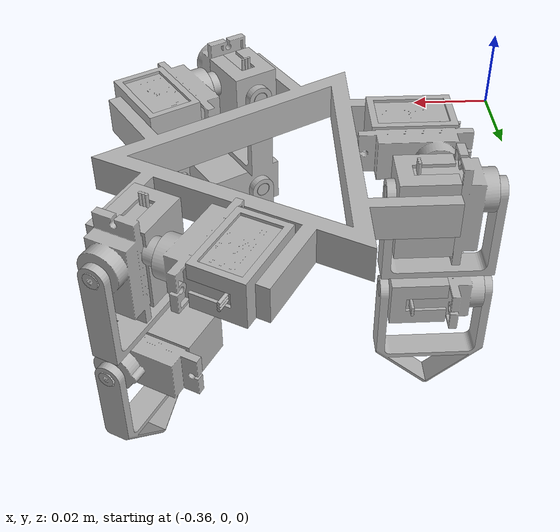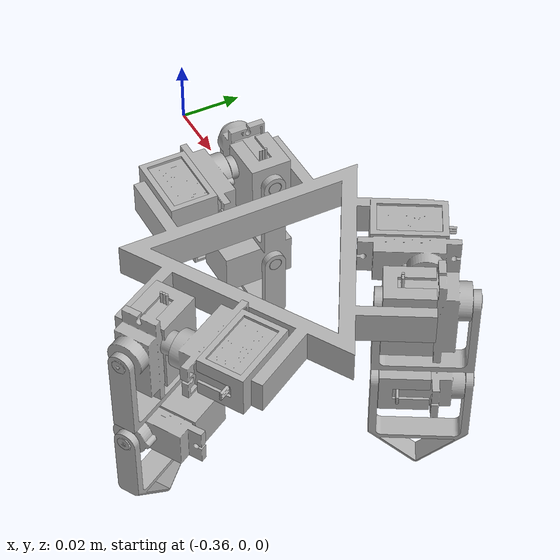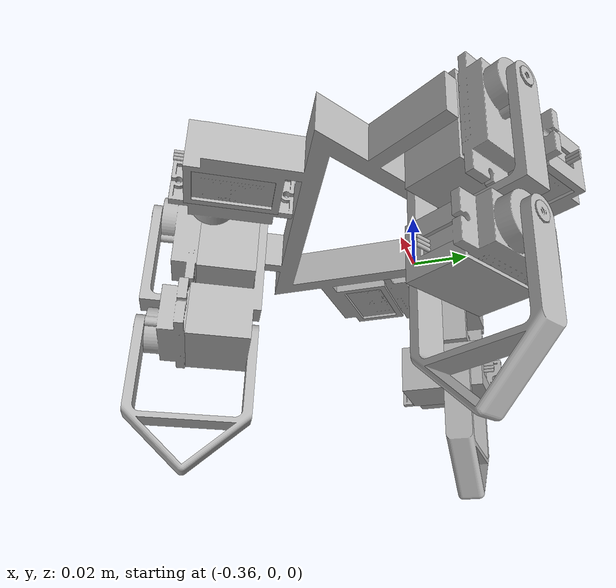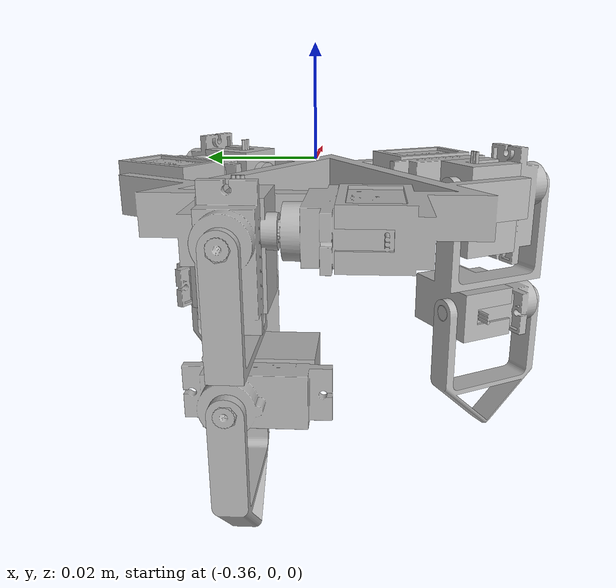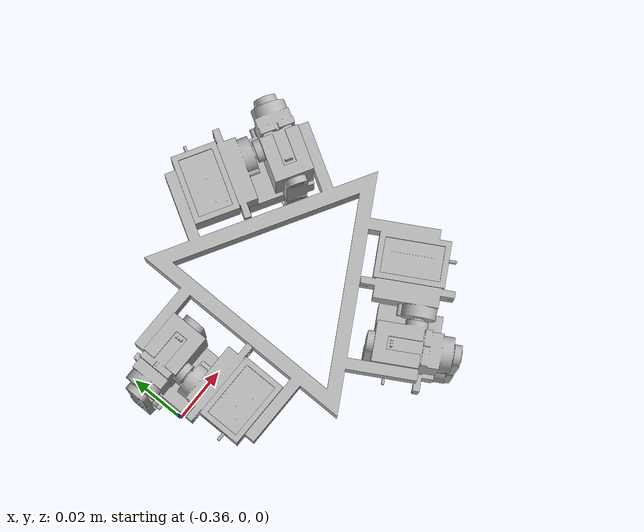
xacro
<?xml version="1.0" ?>
<robot name="Triped" xmlns:xacro="http://www.ros.org/wiki/xacro">

<mujoco>
  <compiler meshdir="../meshes/" balanceinertia="true" discardvisual="false" />
</mujoco>

<xacro:include filename="$(find Triped_description)/urdf/materials.xacro" />
<xacro:include filename="$(find Triped_description)/urdf/Triped.trans" />
<xacro:include filename="$(find Triped_description)/urdf/Triped.gazebo" />

<link name="base_link">
  <inertial>
    <origin xyz="-0.29999999999999977 0.002819220522697178 -0.018268314912160678" rpy="0 0 0"/>
    <mass value="0.1757688053142464"/>
    <inertia ixx="0.000131" iyy="0.000131" izz="0.000257" ixy="-0.0" iyz="-0.0" ixz="0.0"/>
  </inertial>
  <visual>
    <origin xyz="0 0 0" rpy="0 0 0"/>
    <geometry>
      <mesh filename="package://Triped_description/meshes/base_link.stl" scale="0.001 0.001 0.001"/>
    </geometry>
    <material name="silver"/>
  </visual>
</link>

<link name="servo_7_1">
  <inertial>
    <origin xyz="-0.012444434964551943 0.0004572862700335852 2.3437537285259102e-07" rpy="0 0 0"/>
    <mass value="0.05681321383283272"/>
    <inertia ixx="3e-06" iyy="4e-06" izz="6e-06" ixy="0.0" iyz="0.0" ixz="0.0"/>
  </inertial>
  <visual>
    <origin xyz="0.334457 -0.013741 0.052031" rpy="0 0 0"/>
    <geometry>
      <mesh filename="package://Triped_description/meshes/servo_7_1.stl" scale="0.001 0.001 0.001"/>
    </geometry>
    <material name="silver"/>
  </visual>
</link>

<link name="servo_8_1">
  <inertial>
    <origin xyz="0.005826157473749316 -0.011006146504216378 2.3443497752101417e-07" rpy="0 0 0"/>
    <mass value="0.056813213832833276"/>
    <inertia ixx="4e-06" iyy="3e-06" izz="6e-06" ixy="-0.0" iyz="0.0" ixz="-0.0"/>
  </inertial>
  <visual>
    <origin xyz="0.29223 0.032482 0.052031" rpy="0 0 0"/>
    <geometry>
      <mesh filename="package://Triped_description/meshes/servo_8_1.stl" scale="0.001 0.001 0.001"/>
    </geometry>
    <material name="silver"/>
  </visual>
</link>

<link name="servo_9_1">
  <inertial>
    <origin xyz="0.006618277490802571 0.010548521802274634 2.3443497750019748e-07" rpy="0 0 0"/>
    <mass value="0.05681321383283352"/>
    <inertia ixx="3e-06" iyy="4e-06" izz="6e-06" ixy="-0.0" iyz="-0.0" ixz="-0.0"/>
  </inertial>
  <visual>
    <origin xyz="0.273313 -0.027199 0.052031" rpy="0 0 0"/>
    <geometry>
      <mesh filename="package://Triped_description/meshes/servo_9_1.stl" scale="0.001 0.001 0.001"/>
    </geometry>
    <material name="silver"/>
  </visual>
</link>

<link name="servo_6_1">
  <inertial>
    <origin xyz="0.006265484650720077 0.010754317370285215 0.00040768815100020867" rpy="0 0 0"/>
    <mass value="0.05681321383283365"/>
    <inertia ixx="5e-06" iyy="4e-06" izz="4e-06" ixy="-1e-06" iyz="-0.0" ixz="-0.0"/>
  </inertial>
  <visual>
    <origin xyz="0.269334 -0.024591 0.021891" rpy="0 0 0"/>
    <geometry>
      <mesh filename="package://Triped_description/meshes/servo_6_1.stl" scale="0.001 0.001 0.001"/>
    </geometry>
    <material name="silver"/>
  </visual>
</link>

<link name="servo_5_1">
  <inertial>
    <origin xyz="0.006180683830604161 -0.010803431808095225 0.0004076881510002052" rpy="0 0 0"/>
    <mass value="0.0568132138328333"/>
    <inertia ixx="5e-06" iyy="4e-06" izz="4e-06" ixy="1e-06" iyz="0.0" ixz="-0.0"/>
  </inertial>
  <visual>
    <origin xyz="0.296478 0.034624 0.021891" rpy="0 0 0"/>
    <geometry>
      <mesh filename="package://Triped_description/meshes/servo_5_1.stl" scale="0.001 0.001 0.001"/>
    </geometry>
    <material name="silver"/>
  </visual>
</link>

<link name="servo_4_1">
  <inertial>
    <origin xyz="-0.012446168481324071 4.977600590196432e-05 0.0004076880913956339" rpy="0 0 0"/>
    <mass value="0.05681321383283373"/>
    <inertia ixx="3e-06" iyy="6e-06" izz="4e-06" ixy="0.0" iyz="-0.0" ixz="0.0"/>
  </inertial>
  <visual>
    <origin xyz="0.334188 -0.01849 0.021891" rpy="0 0 0"/>
    <geometry>
      <mesh filename="package://Triped_description/meshes/servo_4_1.stl" scale="0.001 0.001 0.001"/>
    </geometry>
    <material name="silver"/>
  </visual>
</link>

<link name="servo_3_1">
  <inertial>
    <origin xyz="0.010959246446309023 -0.005914329033999341 2.0625278938923852e-07" rpy="0 0 0"/>
    <mass value="0.05681321383283354"/>
    <inertia ixx="3e-06" iyy="4e-06" izz="6e-06" ixy="-0.0" iyz="-0.0" ixz="0.0"/>
  </inertial>
  <visual>
    <origin xyz="0.297718 -0.04981 0.016881" rpy="0 0 0"/>
    <geometry>
      <mesh filename="package://Triped_description/meshes/servo_3_1.stl" scale="0.001 0.001 0.001"/>
    </geometry>
    <material name="silver"/>
  </visual>
</link>

<link name="servo_2_1">
  <inertial>
    <origin xyz="-0.010601373641961231 -0.006534260499228391 2.0625278941352465e-07" rpy="0 0 0"/>
    <mass value="0.05681321383283315"/>
    <inertia ixx="4e-06" iyy="3e-06" izz="6e-06" ixy="-0.0" iyz="-0.0" ixz="-0.0"/>
  </inertial>
  <visual>
    <origin xyz="0.260446 0.022652 0.016881" rpy="0 0 0"/>
    <geometry>
      <mesh filename="package://Triped_description/meshes/servo_2_1.stl" scale="0.001 0.001 0.001"/>
    </geometry>
    <material name="silver"/>
  </visual>
</link>

<link name="servo_1_1">
  <inertial>
    <origin xyz="-0.00035787280434712576 0.012448251101319707 2.0625278945862746e-07" rpy="0 0 0"/>
    <mass value="0.056813213832833935"/>
    <inertia ixx="4e-06" iyy="3e-06" izz="6e-06" ixy="0.0" iyz="0.0" ixz="0.0"/>
  </inertial>
  <visual>
    <origin xyz="0.341836 0.0187 0.016881" rpy="0 0 0"/>
    <geometry>
      <mesh filename="package://Triped_description/meshes/servo_1_1.stl" scale="0.001 0.001 0.001"/>
    </geometry>
    <material name="silver"/>
  </visual>
</link>

<link name="holder_3_1">
  <inertial>
    <origin xyz="-0.011928104676090512 -0.0008368610120133707 -0.004922377216219281" rpy="0 0 0"/>
    <mass value="0.01270962879806373"/>
    <inertia ixx="1e-06" iyy="1e-06" izz="1e-06" ixy="0.0" iyz="-0.0" ixz="0.0"/>
  </inertial>
  <visual>
    <origin xyz="0.254578 -0.03075 0.016881" rpy="0 0 0"/>
    <geometry>
      <mesh filename="package://Triped_description/meshes/holder_3_1.stl" scale="0.001 0.001 0.001"/>
    </geometry>
    <material name="silver"/>
  </visual>
</link>

<link name="holder_2_1">
  <inertial>
    <origin xyz="0.005240074017050178 0.010748697067850255 -0.004922377216219274" rpy="0 0 0"/>
    <mass value="0.012709628798063744"/>
    <inertia ixx="1e-06" iyy="1e-06" izz="1e-06" ixy="-0.0" iyz="-0.0" ixz="-0.0"/>
  </inertial>
  <visual>
    <origin xyz="0.298523 0.050483 0.016881" rpy="0 0 0"/>
    <geometry>
      <mesh filename="package://Triped_description/meshes/holder_2_1.stl" scale="0.001 0.001 0.001"/>
    </geometry>
    <material name="silver"/>
  </visual>
</link>

<link name="holder_1_1">
  <inertial>
    <origin xyz="0.0066880306590405 -0.009912174487744969 -0.004922377275823887" rpy="0 0 0"/>
    <mass value="0.012709628798063744"/>
    <inertia ixx="1e-06" iyy="1e-06" izz="1e-06" ixy="-0.0" iyz="0.0" ixz="0.0"/>
  </inertial>
  <visual>
    <origin xyz="0.346899 -0.028191 0.016881" rpy="0 0 0"/>
    <geometry>
      <mesh filename="package://Triped_description/meshes/holder_1_1.stl" scale="0.001 0.001 0.001"/>
    </geometry>
    <material name="silver"/>
  </visual>
</link>

<link name="leg_3_1">
  <inertial>
    <origin xyz="0.004435812317048482 0.012450267398115566 -0.025869299731319517" rpy="0 0 0"/>
    <mass value="0.02443333886444788"/>
    <inertia ixx="6e-06" iyy="5e-06" izz="4e-06" ixy="-1e-06" iyz="-0.0" ixz="-1e-06"/>
  </inertial>
  <visual>
    <origin xyz="0.271097 -0.021567 0.016881" rpy="0 0 0"/>
    <geometry>
      <mesh filename="package://Triped_description/meshes/leg_3_1.stl" scale="0.001 0.001 0.001"/>
    </geometry>
    <material name="silver"/>
  </visual>
</link>

<link name="leg_2_1">
  <inertial>
    <origin xyz="0.008564894984045668 -0.010066061313577387 -0.025869299731319448" rpy="0 0 0"/>
    <mass value="0.024433338864447915"/>
    <inertia ixx="6e-06" iyy="5e-06" izz="4e-06" ixy="1e-06" iyz="1e-06" ixz="0.0"/>
  </inertial>
  <visual>
    <origin xyz="0.298216 0.031586 0.016881" rpy="0 0 0"/>
    <geometry>
      <mesh filename="package://Triped_description/meshes/leg_2_1.stl" scale="0.001 0.001 0.001"/>
    </geometry>
    <material name="silver"/>
  </visual>
</link>

<link name="leg_1_1">
  <inertial>
    <origin xyz="-0.012999707301094343 -0.002383544516446196 -0.025869299790924144" rpy="0 0 0"/>
    <mass value="0.024433338864447915"/>
    <inertia ixx="5e-06" iyy="6e-06" izz="4e-06" ixy="0.0" iyz="-1e-06" ixz="1e-06"/>
  </inertial>
  <visual>
    <origin xyz="0.330688 -0.018476 0.016881" rpy="0 0 0"/>
    <geometry>
      <mesh filename="package://Triped_description/meshes/leg_1_1.stl" scale="0.001 0.001 0.001"/>
    </geometry>
    <material name="silver"/>
  </visual>
</link>

<link name="foot_3_1">
  <inertial>
    <origin xyz="0.008302420898782858 0.014249390945855114 -0.018859401725519927" rpy="0 0 0"/>
    <mass value="0.01400317930423439"/>
    <inertia ixx="3e-06" iyy="2e-06" izz="2e-06" ixy="-1e-06" iyz="0.0" ixz="0.0"/>
  </inertial>
  <visual>
    <origin xyz="0.270746 -0.021652 0.052031" rpy="0 0 0"/>
    <geometry>
      <mesh filename="package://Triped_description/meshes/foot_3_1.stl" scale="0.001 0.001 0.001"/>
    </geometry>
    <material name="silver"/>
  </visual>
  <collision>
    <origin xyz="0.270746 -0.021652 0.052031" rpy="0 0 0"/>
    <geometry>
      <mesh filename="package://Triped_description/meshes/foot_3_1.stl" scale="0.001 0.001 0.001"/>
    </geometry>
  </collision>
</link>

<link name="foot_1_1">
  <inertial>
    <origin xyz="-0.016491210448172477 6.594988468514376e-05 -0.01885940178512461" rpy="0 0 0"/>
    <mass value="0.014003179304234387"/>
    <inertia ixx="2e-06" iyy="4e-06" izz="2e-06" ixy="0.0" iyz="0.0" ixz="-0.0"/>
  </inertial>
  <visual>
    <origin xyz="0.330937 -0.018737 0.052031" rpy="0 0 0"/>
    <geometry>
      <mesh filename="package://Triped_description/meshes/foot_1_1.stl" scale="0.001 0.001 0.001"/>
    </geometry>
    <material name="silver"/>
  </visual>
  <collision>
    <origin xyz="0.330937 -0.018737 0.052031" rpy="0 0 0"/>
    <geometry>
      <mesh filename="package://Triped_description/meshes/foot_1_1.stl" scale="0.001 0.001 0.001"/>
    </geometry>
  </collision>
</link>

<link name="foot_2_1">
  <inertial>
    <origin xyz="0.008188789549389397 -0.014314679262448449 -0.018859401725519885" rpy="0 0 0"/>
    <mass value="0.014003179304234383"/>
    <inertia ixx="3e-06" iyy="2e-06" izz="2e-06" ixy="1e-06" iyz="-0.0" ixz="0.0"/>
  </inertial>
  <visual>
    <origin xyz="0.298317 0.031932 0.052031" rpy="0 0 0"/>
    <geometry>
      <mesh filename="package://Triped_description/meshes/foot_2_1.stl" scale="0.001 0.001 0.001"/>
    </geometry>
    <material name="silver"/>
  </visual>
  <collision>
    <origin xyz="0.298317 0.031932 0.052031" rpy="0 0 0"/>
    <geometry>
      <mesh filename="package://Triped_description/meshes/foot_2_1.stl" scale="0.001 0.001 0.001"/>
    </geometry>
  </collision>
</link>

<joint name="base_to_servo_1" type="fixed">
  <origin xyz="-0.341836 -0.0187 -0.016881" rpy="0 0 0"/>
  <parent link="base_link"/>
  <child link="servo_1_1"/>
</joint>

<joint name="base_to_servo_2" type="fixed">
  <origin xyz="-0.260446 -0.022652 -0.016881" rpy="0 0 0"/>
  <parent link="base_link"/>
  <child link="servo_2_1"/>
</joint>

<joint name="base_to_servo_3" type="fixed">
  <origin xyz="-0.297718 0.04981 -0.016881" rpy="0 0 0"/>
  <parent link="base_link"/>
  <child link="servo_3_1"/>
</joint>

<joint name="holder_to_servo_4" type="fixed">
  <origin xyz="0.012711 -0.009701 -0.00501" rpy="0 0 0"/>
  <parent link="holder_1_1"/>
  <child link="servo_4_1"/>
</joint>

<joint name="holder_to_servo_5" type="fixed">
  <origin xyz="0.002045 0.015859 -0.00501" rpy="0 0 0"/>
  <parent link="holder_2_1"/>
  <child link="servo_5_1"/>
</joint>

<joint name="holder_to_servo_6" type="fixed">
  <origin xyz="-0.014756 -0.006159 -0.00501" rpy="0 0 0"/>
  <parent link="holder_3_1"/>
  <child link="servo_6_1"/>
</joint>

<joint name="leg_to_servo_7" type="fixed">
  <origin xyz="-0.003769 -0.004735 -0.03515" rpy="0 0 0"/>
  <parent link="leg_1_1"/>
  <child link="servo_7_1"/>
</joint>

<joint name="leg_to_servo_8" type="fixed">
  <origin xyz="0.005986 -0.000896 -0.03515" rpy="0 0 0"/>
  <parent link="leg_2_1"/>
  <child link="servo_8_1"/>
</joint>

<joint name="leg_to_servo_9" type="fixed">
  <origin xyz="-0.002216 0.005632 -0.03515" rpy="0 0 0"/>
  <parent link="leg_3_1"/>
  <child link="servo_9_1"/>
</joint>

<joint name="revolute_holder_10" type="continuous">
  <origin xyz="-0.346899 0.028191 -0.016881" rpy="0 0 0"/>
  <parent link="base_link"/>
  <child link="holder_1_1"/>
  <axis xyz="-0.003977 -0.999992 0.0"/>
</joint>

<joint name="revolute_holder_11" type="continuous">
  <origin xyz="-0.298523 -0.050483 -0.016881" rpy="0 0 0"/>
  <parent link="base_link"/>
  <child link="holder_2_1"/>
  <axis xyz="0.868007 0.496552 -0.0"/>
</joint>

<joint name="revolute_holder_12" type="continuous">
  <origin xyz="-0.254578 0.03075 -0.016881" rpy="0 0 0"/>
  <parent link="base_link"/>
  <child link="holder_3_1"/>
  <axis xyz="-0.86403 0.50344 -0.0"/>
</joint>

<joint name="revolulte_leg_13" type="continuous">
  <origin xyz="0.016211 -0.009715 0.0" rpy="0 0 0"/>
  <parent link="holder_1_1"/>
  <child link="leg_1_1"/>
  <axis xyz="0.999992 -0.003977 0.0"/>
</joint>

<joint name="revolulte_leg_14" type="continuous">
  <origin xyz="0.000307 0.018897 0.0" rpy="0 0 0"/>
  <parent link="holder_2_1"/>
  <child link="leg_2_1"/>
  <axis xyz="-0.496552 0.868007 -0.0"/>
</joint>

<joint name="revolulte_leg_15" type="continuous">
  <origin xyz="-0.016519 -0.009183 0.0" rpy="0 0 0"/>
  <parent link="holder_3_1"/>
  <child link="leg_3_1"/>
  <axis xyz="-0.50344 -0.86403 0.0"/>
</joint>

<joint name="revolute_foot_16" type="continuous">
  <origin xyz="-0.000249 0.000261 -0.03515" rpy="0 0 0"/>
  <parent link="leg_1_1"/>
  <child link="foot_1_1"/>
  <axis xyz="0.999992 -0.003977 0.0"/>
</joint>

<joint name="revolute_foot_17" type="continuous">
  <origin xyz="-0.000101 -0.000346 -0.03515" rpy="0 0 0"/>
  <parent link="leg_2_1"/>
  <child link="foot_2_1"/>
  <axis xyz="-0.496552 0.868007 -0.0"/>
</joint>

<joint name="revolute_foot_18" type="continuous">
  <origin xyz="0.000351 8.5e-05 -0.03515" rpy="0 0 0"/>
  <parent link="leg_3_1"/>
  <child link="foot_3_1"/>
  <axis xyz="-0.50344 -0.86403 0.0"/>
</joint>

</robot>

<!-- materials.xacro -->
<robot name="Assembled" xmlns:xacro="http://www.ros.org/wiki/xacro" >

<material name="silver">
  <color rgba="0.700 0.700 0.700 1.000"/>
</material>

</robot>

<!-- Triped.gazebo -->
<robot name="Triped" xmlns:xacro="http://www.ros.org/wiki/xacro" >

<xacro:property name="body_color" value="Gazebo/Silver" />

<gazebo>
  <plugin name="control" filename="libgazebo_ros_control.so"/>
</gazebo>
<gazebo reference="base_link">
  <material>${body_color}</material>
  <mu1>0.2</mu1>
  <mu2>0.2</mu2>
  <selfCollide>true</selfCollide>
  <gravity>true</gravity>
</gazebo>

<gazebo reference="servo_7_1">
  <material>${body_color}</material>
  <mu1>0.2</mu1>
  <mu2>0.2</mu2>
  <selfCollide>true</selfCollide>
</gazebo>

<gazebo reference="servo_8_1">
  <material>${body_color}</material>
  <mu1>0.2</mu1>
  <mu2>0.2</mu2>
  <selfCollide>true</selfCollide>
</gazebo>

<gazebo reference="servo_9_1">
  <material>${body_color}</material>
  <mu1>0.2</mu1>
  <mu2>0.2</mu2>
  <selfCollide>true</selfCollide>
</gazebo>

<gazebo reference="servo_6_1">
  <material>${body_color}</material>
  <mu1>0.2</mu1>
  <mu2>0.2</mu2>
  <selfCollide>true</selfCollide>
</gazebo>

<gazebo reference="servo_5_1">
  <material>${body_color}</material>
  <mu1>0.2</mu1>
  <mu2>0.2</mu2>
  <selfCollide>true</selfCollide>
</gazebo>

<gazebo reference="servo_4_1">
  <material>${body_color}</material>
  <mu1>0.2</mu1>
  <mu2>0.2</mu2>
  <selfCollide>true</selfCollide>
</gazebo>

<gazebo reference="servo_3_1">
  <material>${body_color}</material>
  <mu1>0.2</mu1>
  <mu2>0.2</mu2>
  <selfCollide>true</selfCollide>
</gazebo>

<gazebo reference="servo_2_1">
  <material>${body_color}</material>
  <mu1>0.2</mu1>
  <mu2>0.2</mu2>
  <selfCollide>true</selfCollide>
</gazebo>

<gazebo reference="servo_1_1">
  <material>${body_color}</material>
  <mu1>0.2</mu1>
  <mu2>0.2</mu2>
  <selfCollide>true</selfCollide>
</gazebo>

<gazebo reference="holder_3_1">
  <material>${body_color}</material>
  <mu1>0.2</mu1>
  <mu2>0.2</mu2>
  <selfCollide>true</selfCollide>
</gazebo>

<gazebo reference="holder_2_1">
  <material>${body_color}</material>
  <mu1>0.2</mu1>
  <mu2>0.2</mu2>
  <selfCollide>true</selfCollide>
</gazebo>

<gazebo reference="holder_1_1">
  <material>${body_color}</material>
  <mu1>0.2</mu1>
  <mu2>0.2</mu2>
  <selfCollide>true</selfCollide>
</gazebo>

<gazebo reference="leg_3_1">
  <material>${body_color}</material>
  <mu1>0.2</mu1>
  <mu2>0.2</mu2>
  <selfCollide>true</selfCollide>
</gazebo>

<gazebo reference="leg_2_1">
  <material>${body_color}</material>
  <mu1>0.2</mu1>
  <mu2>0.2</mu2>
  <selfCollide>true</selfCollide>
</gazebo>

<gazebo reference="leg_1_1">
  <material>${body_color}</material>
  <mu1>0.2</mu1>
  <mu2>0.2</mu2>
  <selfCollide>true</selfCollide>
</gazebo>

<gazebo reference="foot_3_1">
  <material>${body_color}</material>
  <mu1>0.2</mu1>
  <mu2>0.2</mu2>
  <selfCollide>true</selfCollide>
</gazebo>

<gazebo reference="foot_1_1">
  <material>${body_color}</material>
  <mu1>0.2</mu1>
  <mu2>0.2</mu2>
  <selfCollide>true</selfCollide>
</gazebo>

<gazebo reference="foot_2_1">
  <material>${body_color}</material>
  <mu1>0.2</mu1>
  <mu2>0.2</mu2>
  <selfCollide>true</selfCollide>
</gazebo>

</robot>
